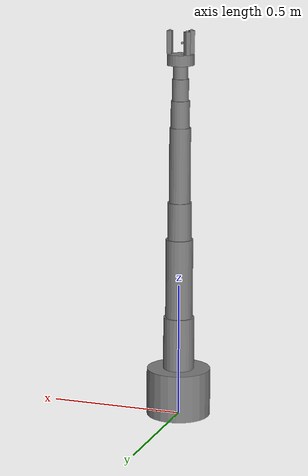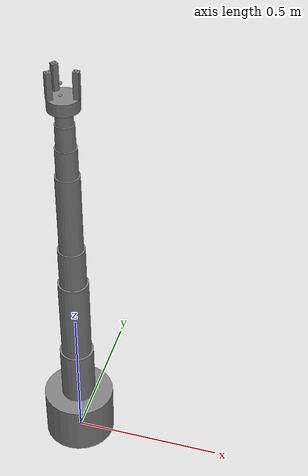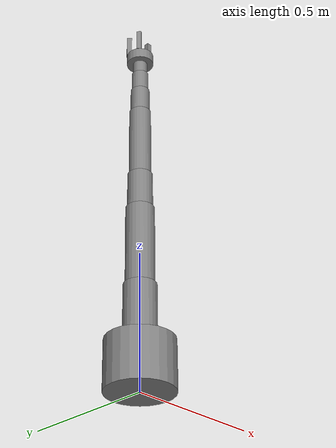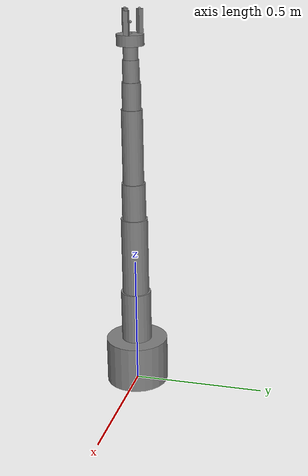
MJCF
<mujoco model="structural_body">
  <compiler angle="radian"/>

  <worldbody>
    <body name="body_0000">
      <inertial pos="0 0 0.09" quat="0.5 0.5 -0.5 0.5" mass="9" diaginertia="0.0648 0.0567 0.0567"/>
      <geom size="0.12 0.09" pos="0 0 0.09" type="cylinder"/>
      <site name="robot_base" pos="0 0 0"/>
      <body name="body_0001" pos="0 0 0.18">
        <inertial pos="0 0 0.1" mass="1.9023" diaginertia="0.00794082 0.00794082 0.00319966"/>
        <joint name="axis_0000" pos="0 0 0" axis="0 0 1" range="-2.85 2.85" actuatorfrcrange="-170 170"/>
        <geom size="0.058 0.1" pos="0 0 0.1" type="cylinder"/>
        <body name="body_0002" pos="0 0 0.2">
          <inertial pos="0 0 0.15" mass="2.20971" diaginertia="0.0180119 0.0180119 0.00287824"/>
          <joint name="axis_0001" pos="0 0 0" axis="0 1 0" range="-2.85 2.85" actuatorfrcrange="-170 170"/>
          <geom size="0.05104 0.15" pos="0 0 0.15" type="cylinder"/>
          <body name="body_0003" pos="0 0 0.3">
            <inertial pos="0 0 0.07" mass="0.798559" diaginertia="0.00170706 0.00170706 0.0008055"/>
            <joint name="axis_0002" pos="0 0 0" axis="0 0 1" range="-2.85 2.85" actuatorfrcrange="-170 170"/>
            <geom size="0.044915 0.07" pos="0 0 0.07" type="cylinder"/>
            <body name="body_0004" pos="0 0 0.14">
              <inertial pos="0 0 0.14" mass="1.23681" diaginertia="0.00856353 0.00856353 0.00096611"/>
              <joint name="axis_0003" pos="0 0 0" axis="0 1 0" range="-2.85 2.85" actuatorfrcrange="-170 170"/>
              <geom size="0.039525 0.14" pos="0 0 0.14" type="cylinder"/>
              <body name="body_0005" pos="0 0 0.28">
                <inertial pos="0 0 0.05" mass="0.342066" diaginertia="0.00038851 0.00038851 0.00020692"/>
                <joint name="axis_0004" pos="0 0 0" axis="0 0 1" range="-2.85 2.85" actuatorfrcrange="-170 170"/>
                <geom size="0.034782 0.05" pos="0 0 0.05" type="cylinder"/>
                <body name="body_0006" pos="0 0 0.1">
                  <inertial pos="0 0 0.04" mass="0.25" diaginertia="0.00019189 0.00019189 0.00011711"/>
                  <joint name="axis_0005" pos="0 0 0" axis="0 1 0" range="-2.85 2.85" actuatorfrcrange="-170 170"/>
                  <geom size="0.030608 0.04" pos="0 0 0.04" type="cylinder"/>
                  <body name="body_0007" pos="0 0 0.08">
                    <inertial pos="0 0 0.025" mass="0.25" diaginertia="9.743e-05 9.743e-05 9.069e-05"/>
                    <joint name="axis_0006" pos="0 0 0" axis="0 0 1" range="-2.85 2.85" actuatorfrcrange="-170 170"/>
                    <geom size="0.026935 0.025" pos="0 0 0.025" type="cylinder"/>
                    <body name="body_0008" pos="0 0 0.05">
                      <inertial pos="0 0 0.02" quat="0.5 0.5 -0.5 0.5" mass="0.4" diaginertia="0.0005 0.00030333 0.00030333"/>
                      <geom size="0.05 0.02" pos="0 0 0.02" type="cylinder"/>
                      <site name="body_0008_grasp_point" pos="-0.00540243 -9.0523e-10 0.0809031"/>
                      <site name="body_0008_grasp_center" pos="-0.00744933 0 0.04"/>
                      <site name="body_0008_wrist" pos="0 0 0"/>
                      <body name="body_0009" pos="0.042 0 0.04">
                        <inertial pos="0 0 0.0425" mass="0.05" diaginertia="3.145e-05 3.145e-05 2.7e-06"/>
                        <joint name="axis_0008" pos="0 0 0" axis="0 -1 0" range="0 0.55" actuatorfrcrange="-18 18"/>
                        <geom size="0.009 0.009 0.0425" pos="0 0 0.0425" type="box"/>
                        <site name="body_0008_tip" pos="0 0 0.085"/>
                        <site name="body_0008_contact_0" pos="0 0 0.085"/>
                      </body>
                      <body name="body_0010" pos="-0.032174 0.026997 0.04" quat="0.34202 0 0 0.939693">
                        <inertial pos="0 0 0.0425" mass="0.05" diaginertia="3.145e-05 3.145e-05 2.7e-06"/>
                        <joint name="axis_0009" pos="0 0 0" axis="0 -1 0" range="0 0.55" actuatorfrcrange="-18 18"/>
                        <geom size="0.009 0.009 0.0425" pos="0 0 0.0425" type="box"/>
                        <site name="body_0008_contact_1" pos="0 0 0.085"/>
                      </body>
                      <body name="body_0011" pos="-0.032174 -0.026997 0.04" quat="-0.34202 0 0 0.939693">
                        <inertial pos="0 0 0.0425" mass="0.05" diaginertia="3.145e-05 3.145e-05 2.7e-06"/>
                        <joint name="axis_0010" pos="0 0 0" axis="0 -1 0" range="0 0.55" actuatorfrcrange="-18 18"/>
                        <geom size="0.009 0.009 0.0425" pos="0 0 0.0425" type="box"/>
                        <site name="body_0008_contact_2" pos="0 0 0.085"/>
                      </body>
                    </body>
                  </body>
                </body>
              </body>
            </body>
          </body>
        </body>
      </body>
    </body>
  </worldbody>

  <actuator>
    <general name="axis_0000_motor" joint="axis_0000" ctrllimited="true" ctrlrange="-170 170" forcelimited="true" forcerange="-170 170"/>
    <general name="axis_0001_motor" joint="axis_0001" ctrllimited="true" ctrlrange="-170 170" forcelimited="true" forcerange="-170 170"/>
    <general name="axis_0002_motor" joint="axis_0002" ctrllimited="true" ctrlrange="-170 170" forcelimited="true" forcerange="-170 170"/>
    <general name="axis_0003_motor" joint="axis_0003" ctrllimited="true" ctrlrange="-170 170" forcelimited="true" forcerange="-170 170"/>
    <general name="axis_0004_motor" joint="axis_0004" ctrllimited="true" ctrlrange="-170 170" forcelimited="true" forcerange="-170 170"/>
    <general name="axis_0005_motor" joint="axis_0005" ctrllimited="true" ctrlrange="-170 170" forcelimited="true" forcerange="-170 170"/>
    <general name="axis_0006_motor" joint="axis_0006" ctrllimited="true" ctrlrange="-170 170" forcelimited="true" forcerange="-170 170"/>
    <general name="axis_0008_motor" joint="axis_0008" ctrllimited="true" ctrlrange="-18 18" forcelimited="true" forcerange="-18 18"/>
    <general name="axis_0009_motor" joint="axis_0009" ctrllimited="true" ctrlrange="-18 18" forcelimited="true" forcerange="-18 18"/>
    <general name="axis_0010_motor" joint="axis_0010" ctrllimited="true" ctrlrange="-18 18" forcelimited="true" forcerange="-18 18"/>
  </actuator>
</mujoco>
